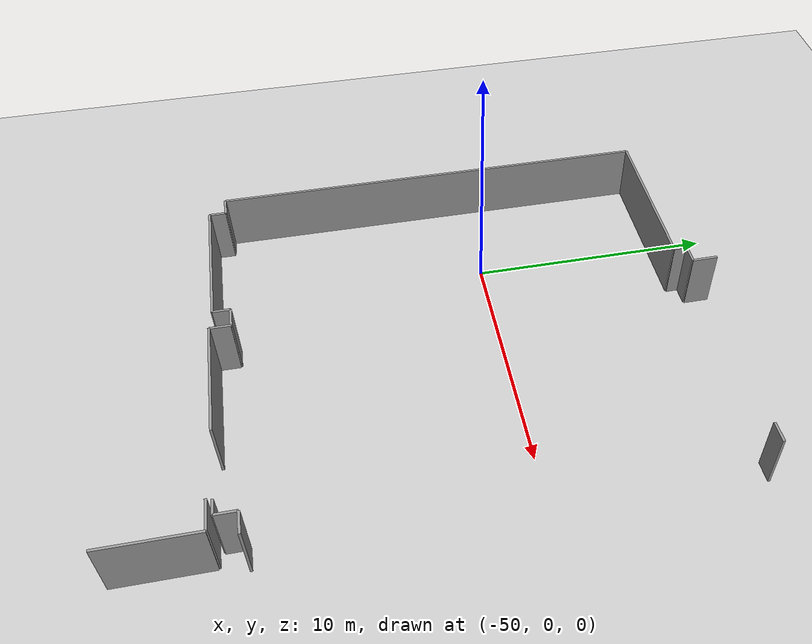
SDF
<sdf version="1.6">
 <world name="default">
  <model name="ground_plane">
   <static>1</static>
   <link name="link">
    <collision name="collision">
     <geometry><plane><normal>0 0 1</normal><size>100 100</size></plane></geometry>
     <surface><friction><ode><mu>100</mu><mu2>50</mu2></ode></friction></surface>
    </collision>
    <visual name="visual">
     <cast_shadows>0</cast_shadows>
     <geometry><plane><normal>0 0 1</normal><size>100 100</size></plane></geometry>
     <material>
      <script><uri>file://media/materials/scripts/gazebo.material</uri><name>Gazebo/Grey</name></script>
     </material>
    </visual>
   </link>
  </model>
  <model name="50045366">
   <static>1</static>
   <link name="Wall_32">
    <collision name="Wall_32_Collision">
     <geometry><box><size>0.681942309891 0.1 2.5</size></box></geometry>
     <pose>0.340971154945 0 1.25 0 0 0</pose>
    </collision>
    <visual name="Wall_32_Visual">
     <pose>0.340971154945 0 1.25 0 0 0</pose>
     <geometry><box><size>0.681942309891 0.1 2.5</size></box></geometry>
     <material>
      <script><uri>file://media/materials/scripts/gazebo.material</uri><name>Gazebo/Grey</name></script>
      <ambient>1 1 1 1</ambient>
     </material>
    </visual>
    <pose>0.806797830588 -36.6302981037 0 0 0 1.57079632679</pose>
   </link>
   <link name="Wall_33">
    <collision name="Wall_33_Collision">
     <geometry><box><size>0.806797830588 0.1 2.5</size></box></geometry>
     <pose>0.403398915294 0 1.25 0 0 0</pose>
    </collision>
    <visual name="Wall_33_Visual">
     <pose>0.403398915294 0 1.25 0 0 0</pose>
     <geometry><box><size>0.806797830588 0.1 2.5</size></box></geometry>
     <material>
      <script><uri>file://media/materials/scripts/gazebo.material</uri><name>Gazebo/Grey</name></script>
      <ambient>1 1 1 1</ambient>
     </material>
    </visual>
    <pose>0.806797830588 -35.9483557938 0 0 0 3.14159265359</pose>
   </link>
   <link name="Wall_34">
    <collision name="Wall_34_Collision">
     <geometry><box><size>18.2428776467 0.1 2.5</size></box></geometry>
     <pose>9.12143882334 0 1.25 0 0 0</pose>
    </collision>
    <visual name="Wall_34_Visual">
     <pose>9.12143882334 0 1.25 0 0 0</pose>
     <geometry><box><size>18.2428776467 0.1 2.5</size></box></geometry>
     <material>
      <script><uri>file://media/materials/scripts/gazebo.material</uri><name>Gazebo/Grey</name></script>
      <ambient>1 1 1 1</ambient>
     </material>
    </visual>
    <pose>0.0 -35.9483557938 0 0 0 1.57079632679</pose>
   </link>
   <link name="Wall_35">
    <collision name="Wall_35_Collision">
     <geometry><box><size>6.68237416011 0.1 2.5</size></box></geometry>
     <pose>3.34118708006 0 1.25 0 0 0</pose>
    </collision>
    <visual name="Wall_35_Visual">
     <pose>3.34118708006 0 1.25 0 0 0</pose>
     <geometry><box><size>6.68237416011 0.1 2.5</size></box></geometry>
     <material>
      <script><uri>file://media/materials/scripts/gazebo.material</uri><name>Gazebo/Grey</name></script>
      <ambient>1 1 1 1</ambient>
     </material>
    </visual>
    <pose>0.0 -17.7054781471 0 0 0 0.0</pose>
   </link>
   <link name="Wall_36">
    <collision name="Wall_36_Collision">
     <geometry><box><size>0.53447815981 0.1 2.5</size></box></geometry>
     <pose>0.267239079905 0 1.25 0 0 0</pose>
    </collision>
    <visual name="Wall_36_Visual">
     <pose>0.267239079905 0 1.25 0 0 0</pose>
     <geometry><box><size>0.53447815981 0.1 2.5</size></box></geometry>
     <material>
      <script><uri>file://media/materials/scripts/gazebo.material</uri><name>Gazebo/Grey</name></script>
      <ambient>1 1 1 1</ambient>
     </material>
    </visual>
    <pose>6.68237416011 -17.7054781471 0 0 0 1.57079632679</pose>
   </link>
   <link name="Wall_37">
    <collision name="Wall_37_Collision">
     <geometry><box><size>0.785078304607 0.1 2.5</size></box></geometry>
     <pose>0.392539152303 0 1.25 0 0 0</pose>
    </collision>
    <visual name="Wall_37_Visual">
     <pose>0.392539152303 0 1.25 0 0 0</pose>
     <geometry><box><size>0.785078304607 0.1 2.5</size></box></geometry>
     <material>
      <script><uri>file://media/materials/scripts/gazebo.material</uri><name>Gazebo/Grey</name></script>
      <ambient>1 1 1 1</ambient>
     </material>
    </visual>
    <pose>6.68237416011 -17.1709999873 0 0 0 0.0</pose>
   </link>
   <link name="Wall_38">
    <collision name="Wall_38_Collision">
     <geometry><box><size>1.04393440957 0.1 2.5</size></box></geometry>
     <pose>0.521967204786 0 1.25 0 0 0</pose>
    </collision>
    <visual name="Wall_38_Visual">
     <pose>0.521967204786 0 1.25 0 0 0</pose>
     <geometry><box><size>1.04393440957 0.1 2.5</size></box></geometry>
     <material>
      <script><uri>file://media/materials/scripts/gazebo.material</uri><name>Gazebo/Grey</name></script>
      <ambient>1 1 1 1</ambient>
     </material>
    </visual>
    <pose>7.46745246472 -17.1709999873 0 0 0 1.57079632679</pose>
   </link>
   <link name="Wall_43">
    <collision name="Wall_43_Collision">
     <geometry><box><size>0.840202715576 0.1 2.5</size></box></geometry>
     <pose>0.420101357788 0 1.25 0 0 0</pose>
    </collision>
    <visual name="Wall_43_Visual">
     <pose>0.420101357788 0 1.25 0 0 0</pose>
     <geometry><box><size>0.840202715576 0.1 2.5</size></box></geometry>
     <material>
      <script><uri>file://media/materials/scripts/gazebo.material</uri><name>Gazebo/Grey</name></script>
      <ambient>1 1 1 1</ambient>
     </material>
    </visual>
    <pose>15.859699483 -17.1684596919 0 0 0 0.0</pose>
   </link>
   <link name="Wall_93">
    <collision name="Wall_93_Collision">
     <geometry><box><size>0.88313370845 0.1 2.5</size></box></geometry>
     <pose>0.441566854225 0 1.25 0 0 0</pose>
    </collision>
    <visual name="Wall_93_Visual">
     <pose>0.441566854225 0 1.25 0 0 0</pose>
     <geometry><box><size>0.88313370845 0.1 2.5</size></box></geometry>
     <material>
      <script><uri>file://media/materials/scripts/gazebo.material</uri><name>Gazebo/Grey</name></script>
      <ambient>1 1 1 1</ambient>
     </material>
    </visual>
    <pose>16.7103174099 -35.9199044849 0 0 0 3.14159265359</pose>
   </link>
   <link name="Wall_94">
    <collision name="Wall_94_Collision">
     <geometry><box><size>0.843505099643 0.1 2.5</size></box></geometry>
     <pose>0.421752549822 0 1.25 0 0 0</pose>
    </collision>
    <visual name="Wall_94_Visual">
     <pose>0.421752549822 0 1.25 0 0 0</pose>
     <geometry><box><size>0.843505099643 0.1 2.5</size></box></geometry>
     <material>
      <script><uri>file://media/materials/scripts/gazebo.material</uri><name>Gazebo/Grey</name></script>
      <ambient>1 1 1 1</ambient>
     </material>
    </visual>
    <pose>15.8271837015 -35.9199044849 0 0 0 -1.57079632679</pose>
   </link>
   <link name="Wall_95">
    <collision name="Wall_95_Collision">
     <geometry><box><size>0.609670904726 0.1 2.5</size></box></geometry>
     <pose>0.304835452363 0 1.25 0 0 0</pose>
    </collision>
    <visual name="Wall_95_Visual">
     <pose>0.304835452363 0 1.25 0 0 0</pose>
     <geometry><box><size>0.609670904726 0.1 2.5</size></box></geometry>
     <material>
      <script><uri>file://media/materials/scripts/gazebo.material</uri><name>Gazebo/Grey</name></script>
      <ambient>1 1 1 1</ambient>
     </material>
    </visual>
    <pose>15.8271837015 -36.7634095845 0 0 0 3.14159265359</pose>
   </link>
   <link name="Wall_96">
    <collision name="Wall_96_Collision">
     <geometry><box><size>4.89286303997 0.1 2.5</size></box></geometry>
     <pose>2.44643151999 0 1.25 0 0 0</pose>
    </collision>
    <visual name="Wall_96_Visual">
     <pose>2.44643151999 0 1.25 0 0 0</pose>
     <geometry><box><size>4.89286303997 0.1 2.5</size></box></geometry>
     <material>
      <script><uri>file://media/materials/scripts/gazebo.material</uri><name>Gazebo/Grey</name></script>
      <ambient>1 1 1 1</ambient>
     </material>
    </visual>
    <pose>12.3519325298 -36.7634095845 0 0 0 3.14159265359</pose>
   </link>
   <link name="Wall_97">
    <collision name="Wall_97_Collision">
     <geometry><box><size>0.844394203046 0.1 2.5</size></box></geometry>
     <pose>0.422197101523 0 1.25 0 0 0</pose>
    </collision>
    <visual name="Wall_97_Visual">
     <pose>0.422197101523 0 1.25 0 0 0</pose>
     <geometry><box><size>0.844394203046 0.1 2.5</size></box></geometry>
     <material>
      <script><uri>file://media/materials/scripts/gazebo.material</uri><name>Gazebo/Grey</name></script>
      <ambient>1 1 1 1</ambient>
     </material>
    </visual>
    <pose>7.45906948978 -36.7634095845 0 0 0 1.57079632679</pose>
   </link>
   <link name="Wall_98">
    <collision name="Wall_98_Collision">
     <geometry><box><size>0.855317473422 0.1 2.5</size></box></geometry>
     <pose>0.427658736711 0 1.25 0 0 0</pose>
    </collision>
    <visual name="Wall_98_Visual">
     <pose>0.427658736711 0 1.25 0 0 0</pose>
     <geometry><box><size>0.855317473422 0.1 2.5</size></box></geometry>
     <material>
      <script><uri>file://media/materials/scripts/gazebo.material</uri><name>Gazebo/Grey</name></script>
      <ambient>1 1 1 1</ambient>
     </material>
    </visual>
    <pose>7.45906948978 -35.9190153815 0 0 0 3.14159265359</pose>
   </link>
   <link name="Wall_99">
    <collision name="Wall_99_Collision">
     <geometry><box><size>0.703153776784 0.1 2.5</size></box></geometry>
     <pose>0.351576888392 0 1.25 0 0 0</pose>
    </collision>
    <visual name="Wall_99_Visual">
     <pose>0.351576888392 0 1.25 0 0 0</pose>
     <geometry><box><size>0.703153776784 0.1 2.5</size></box></geometry>
     <material>
      <script><uri>file://media/materials/scripts/gazebo.material</uri><name>Gazebo/Grey</name></script>
      <ambient>1 1 1 1</ambient>
     </material>
    </visual>
    <pose>6.60375201636 -35.9190153815 0 0 0 -1.57079632679</pose>
   </link>
   <link name="Wall_100">
    <collision name="Wall_100_Collision">
     <geometry><box><size>5.79695988529 0.1 2.5</size></box></geometry>
     <pose>2.89847994265 0 1.25 0 0 0</pose>
    </collision>
    <visual name="Wall_100_Visual">
     <pose>2.89847994265 0 1.25 0 0 0</pose>
     <geometry><box><size>5.79695988529 0.1 2.5</size></box></geometry>
     <material>
      <script><uri>file://media/materials/scripts/gazebo.material</uri><name>Gazebo/Grey</name></script>
      <ambient>1 1 1 1</ambient>
     </material>
    </visual>
    <pose>6.60375201636 -36.6221691583 0 0 0 -3.14019037581</pose>
   </link>
   <link name="Wall_112">
    <collision name="Wall_112_Collision">
     <geometry><box><size>1.23598074456 0.1 2.5</size></box></geometry>
     <pose>0.61799037228 0 1.25 0 0 0</pose>
    </collision>
    <visual name="Wall_112_Visual">
     <pose>0.61799037228 0 1.25 0 0 0</pose>
     <geometry><box><size>1.23598074456 0.1 2.5</size></box></geometry>
     <material>
      <script><uri>file://media/materials/scripts/gazebo.material</uri><name>Gazebo/Grey</name></script>
      <ambient>1 1 1 1</ambient>
     </material>
    </visual>
    <pose>15.1590860017 -36.9821290216 0 0 0 0.0</pose>
   </link>
   <link name="Wall_113">
    <collision name="Wall_113_Collision">
     <geometry><box><size>3.73207504033 0.1 2.5</size></box></geometry>
     <pose>1.86603752016 0 1.25 0 0 0</pose>
    </collision>
    <visual name="Wall_113_Visual">
     <pose>1.86603752016 0 1.25 0 0 0</pose>
     <geometry><box><size>3.73207504033 0.1 2.5</size></box></geometry>
     <material>
      <script><uri>file://media/materials/scripts/gazebo.material</uri><name>Gazebo/Grey</name></script>
      <ambient>1 1 1 1</ambient>
     </material>
    </visual>
    <pose>16.3950667463 -36.9821290216 0 0 0 -1.57079632679</pose>
   </link>
   <pose>-54.1 25.3531975969 0 0 0 0</pose>
  </model>
 </world>
</sdf>
